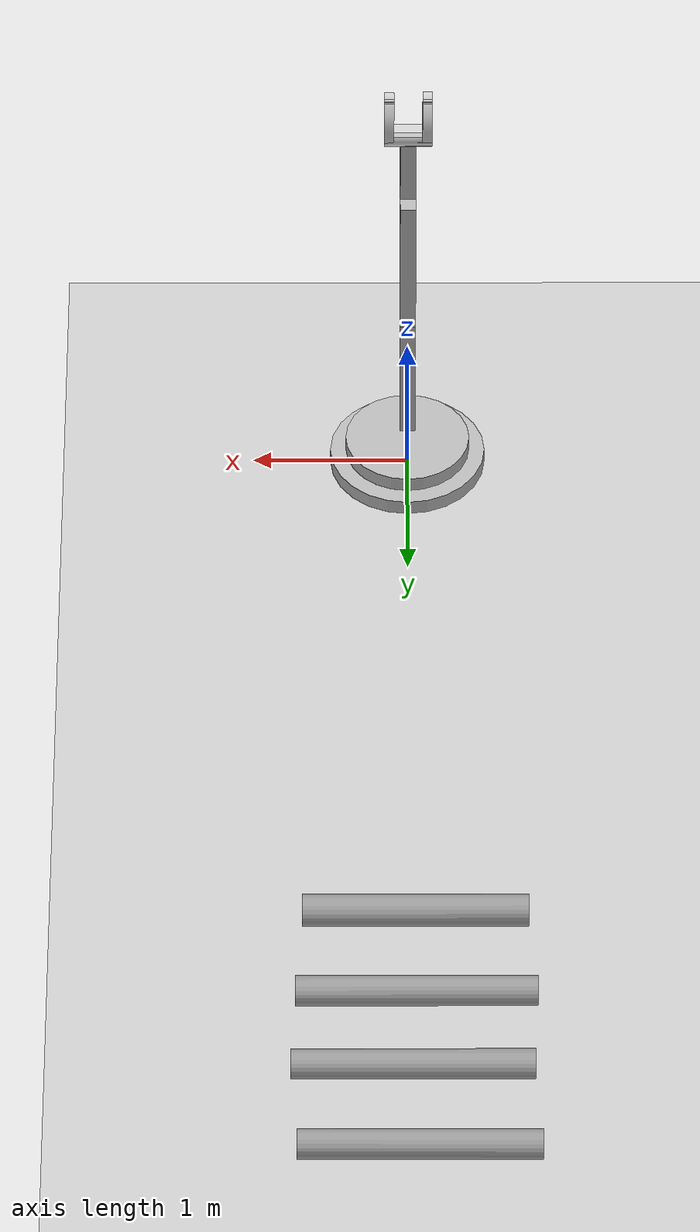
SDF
<sdf version="1.7">
 <world name="default">
  <light name="sun" type="directional">
   <pose>0 0 10 0 -0 0</pose>
   <diffuse>0.8 0.8 0.8 1</diffuse>
   <specular>0.2 0.2 0.2 1</specular>
   <attenuation>
    <range>1000</range>
    <constant>0.9</constant>
    <linear>0.01</linear>
    <quadratic>0.001</quadratic>
   </attenuation>
   <direction>-0.5 0.1 -0.9</direction>
   <spot><inner_angle>0</inner_angle><outer_angle>0</outer_angle><falloff>0</falloff></spot>
  </light>
  <model name="ground_plane">
   <static>1</static>
   <link name="link">
    <collision name="collision">
     <geometry><plane><normal>0 0 1</normal><size>100 100</size></plane></geometry>
     <surface><friction><ode><mu>100</mu><mu2>50</mu2></ode></friction></surface>
    </collision>
    <visual name="visual">
     <cast_shadows>0</cast_shadows>
     <geometry><plane><normal>0 0 1</normal><size>100 100</size></plane></geometry>
     <material>
      <script><uri>file://media/materials/scripts/gazebo.material</uri><name>Gazebo/Grey</name></script>
     </material>
    </visual>
   </link>
  </model>
  <gravity>0 0 -9.8</gravity>
  <magnetic_field>6e-06 2.3e-05 -4.2e-05</magnetic_field>
  <atmosphere type="adiabatic"/>
  <physics type="ode">
   <max_step_size>0.001</max_step_size>
   <real_time_factor>1</real_time_factor>
   <real_time_update_rate>1000</real_time_update_rate>
  </physics>
  <scene><ambient>0.4 0.4 0.4 1</ambient><background>0.7 0.7 0.7 1</background><shadows>1</shadows></scene>
  <spherical_coordinates>
   <surface_model>EARTH_WGS84</surface_model>
   <latitude_deg>0</latitude_deg>
   <longitude_deg>0</longitude_deg>
   <elevation>0</elevation>
   <heading_deg>0</heading_deg>
  </spherical_coordinates>
  <model name="unit_cylinder_mass_1">
   <pose>-0.03162 4.16223 0.100093 3.14159 1.57079 3.14159</pose>
   <link name="link">
    <inertial>
     <mass>1</mass>
     <inertia><ixx>0.145833</ixx><ixy>0</ixy><ixz>0</ixz><iyy>0.145833</iyy><iyz>0</iyz><izz>0.125</izz></inertia>
    </inertial>
    <collision name="collision">
     <geometry><cylinder><radius>0.100093</radius><length>1.3989</length></cylinder></geometry>
    </collision>
    <visual name="visual">
     <geometry><cylinder><radius>0.100093</radius><length>1.3989</length></cylinder></geometry>
     <material>
      <script><name>Gazebo/Grey</name><uri>file://media/materials/scripts/gazebo.material</uri></script>
     </material>
    </visual>
   </link>
  </model>
  <model name="unit_cylinder_mass_3">
   <pose>-0.036165 4.84107 0.092985 0 1.5705 0</pose>
   <link name="link">
    <inertial>
     <mass>3</mass>
     <inertia><ixx>0.145833</ixx><ixy>0</ixy><ixz>0</ixz><iyy>0.145833</iyy><iyz>0</iyz><izz>0.125</izz></inertia>
    </inertial>
    <collision name="collision">
     <geometry><cylinder><radius>0.093203</radius><length>1.48809</length></cylinder></geometry>
    </collision>
    <visual name="visual">
     <geometry><cylinder><radius>0.093203</radius><length>1.48809</length></cylinder></geometry>
     <material>
      <script><name>Gazebo/Grey</name><uri>file://media/materials/scripts/gazebo.material</uri></script>
     </material>
    </visual>
   </link>
  </model>
  <model name="unit_cylinder_mass_5">
   <pose>-0.012537 5.45343 0.092572 0 1.56995 0</pose>
   <link name="link">
    <inertial>
     <mass>5</mass>
     <inertia><ixx>0.145833</ixx><ixy>0</ixy><ixz>0</ixz><iyy>0.145833</iyy><iyz>0</iyz><izz>0.125</izz></inertia>
    </inertial>
    <collision name="collision">
     <geometry><cylinder><radius>0.093203</radius><length>1.48809</length></cylinder></geometry>
    </collision>
    <visual name="visual">
     <geometry><cylinder><radius>0.093203</radius><length>1.48809</length></cylinder></geometry>
     <material>
      <script><name>Gazebo/Grey</name><uri>file://media/materials/scripts/gazebo.material</uri></script>
     </material>
    </visual>
   </link>
  </model>
  <model name="unit_cylinder_mass_10">
   <pose>-0.04885 6.11003 0.090613 0 1.56731 0</pose>
   <link name="link">
    <inertial>
     <mass>10</mass>
     <inertia><ixx>0.145833</ixx><ixy>0</ixy><ixz>0</ixz><iyy>0.145833</iyy><iyz>0</iyz><izz>0.125</izz></inertia>
    </inertial>
    <collision name="collision">
     <geometry><cylinder><radius>0.093203</radius><length>1.48809</length></cylinder></geometry>
    </collision>
    <visual name="visual">
     <geometry><cylinder><radius>0.093203</radius><length>1.48809</length></cylinder></geometry>
     <material>
      <script><name>Gazebo/Grey</name><uri>file://media/materials/scripts/gazebo.material</uri></script>
     </material>
    </visual>
   </link>
  </model>
  <model name="robot">
   <joint name="fixed" type="fixed">
    <pose relative_to="__model__">0 0 0 0 -0 0</pose>
    <parent>world</parent>
    <child>stationary_base</child>
   </joint>
   <link name="stationary_base">
    <pose relative_to="fixed">0 0 0 0 -0 0</pose>
    <inertial>
     <mass>10</mass>
     <inertia><ixx>0.633333</ixx><ixy>0</ixy><ixz>0</ixz><iyy>0.633333</iyy><iyz>0</iyz><izz>1.25</izz></inertia>
    </inertial>
    <collision name="stationary_base_collision">
     <geometry><cylinder><length>0.1</length><radius>0.5</radius></cylinder></geometry>
    </collision>
    <visual name="stationary_base_visual">
     <geometry><cylinder><length>0.1</length><radius>0.5</radius></cylinder></geometry>
    </visual>
   </link>
   <joint name="stationary_base_spin_base_joint" type="revolute">
    <pose relative_to="stationary_base">0 0 0.06 0 -0 0</pose>
    <parent>stationary_base</parent>
    <child>spin_base</child>
    <axis>
     <xyz>0 0 1</xyz>
     <limit><lower>-3.14</lower><upper>3.14</upper><effort>100</effort><velocity>2</velocity></limit>
     <dynamics>
      <damping>10</damping>
      <friction>0.3</friction>
      <spring_reference>0</spring_reference>
      <spring_stiffness>0</spring_stiffness>
     </dynamics>
    </axis>
   </joint>
   <link name="spin_base">
    <pose relative_to="stationary_base_spin_base_joint">0 0 0 0 -0 0</pose>
    <inertial>
     <mass>2</mass>
     <inertia><ixx>0.0816667</ixx><ixy>0</ixy><ixz>0</ixz><iyy>0.0816667</iyy><iyz>0</iyz><izz>0.16</izz></inertia>
    </inertial>
    <collision name="spin_base_collision">
     <pose>0 0 0.05 0 -0 0</pose>
     <geometry><cylinder><length>0.1</length><radius>0.4</radius></cylinder></geometry>
    </collision>
    <visual name="spin_base_visual">
     <pose>0 0 0.05 0 -0 0</pose>
     <geometry><cylinder><length>0.1</length><radius>0.4</radius></cylinder></geometry>
    </visual>
   </link>
   <joint name="spin_base_arm1_joint" type="revolute">
    <pose relative_to="spin_base">0 0 0.2 0 -0 0</pose>
    <parent>spin_base</parent>
    <child>arm1</child>
    <axis>
     <xyz>0 1 0</xyz>
     <limit><lower>-1.57</lower><upper>1.57</upper><effort>100</effort><velocity>2</velocity></limit>
     <dynamics>
      <damping>10</damping>
      <friction>0.3</friction>
      <spring_reference>0</spring_reference>
      <spring_stiffness>0</spring_stiffness>
     </dynamics>
    </axis>
   </joint>
   <link name="arm1">
    <pose relative_to="spin_base_arm1_joint">0 0 0 0 -0 0</pose>
    <inertial>
     <mass>0.5</mass>
     <inertia>
      <ixx>0.000833333</ixx>
      <ixy>0</ixy>
      <ixz>0</ixz>
      <iyy>0.0420833</iyy>
      <iyz>0</iyz>
      <izz>0.0420833</izz>
     </inertia>
    </inertial>
    <collision name="arm1_collision">
     <pose>0 0 0.5 3.14159 1.57079 3.14159</pose>
     <geometry><box><size>1 0.1 0.1</size></box></geometry>
    </collision>
    <visual name="arm1_visual">
     <pose>0 0 0.5 3.14159 1.57079 3.14159</pose>
     <geometry><box><size>1 0.1 0.1</size></box></geometry>
    </visual>
   </link>
   <joint name="arm1_arm2_joint" type="revolute">
    <pose relative_to="arm1">0 0.05 1 0 -0 0</pose>
    <parent>arm1</parent>
    <child>arm2</child>
    <axis>
     <xyz>0 1 0</xyz>
     <limit><lower>-3.14</lower><upper>3.14</upper><effort>100</effort><velocity>2</velocity></limit>
     <dynamics>
      <damping>10</damping>
      <friction>0.3</friction>
      <spring_reference>0</spring_reference>
      <spring_stiffness>0</spring_stiffness>
     </dynamics>
    </axis>
   </joint>
   <link name="arm2">
    <pose relative_to="arm1_arm2_joint">0 0 0 0 -0 0</pose>
    <inertial>
     <mass>0.5</mass>
     <inertia>
      <ixx>0.000833333</ixx>
      <ixy>0</ixy>
      <ixz>0</ixz>
      <iyy>0.0420833</iyy>
      <iyz>0</iyz>
      <izz>0.0420833</izz>
     </inertia>
    </inertial>
    <collision name="arm2_collision">
     <pose>0 0.05 0.5 3.14159 1.57079 3.14159</pose>
     <geometry><box><size>1 0.1 0.1</size></box></geometry>
    </collision>
    <visual name="arm2_visual">
     <pose>0 0.05 0.5 3.14159 1.57079 3.14159</pose>
     <geometry><box><size>1 0.1 0.1</size></box></geometry>
    </visual>
   </link>
   <joint name="arm2_arm3_joint" type="revolute">
    <pose relative_to="arm2">0 0 1 0 -0 0</pose>
    <parent>arm2</parent>
    <child>arm3</child>
    <axis>
     <xyz>0 1 0</xyz>
     <limit><lower>-3.14</lower><upper>3.14</upper><effort>100</effort><velocity>2</velocity></limit>
     <dynamics>
      <damping>10</damping>
      <friction>0.3</friction>
      <spring_reference>0</spring_reference>
      <spring_stiffness>0</spring_stiffness>
     </dynamics>
    </axis>
   </joint>
   <link name="arm3">
    <pose relative_to="arm2_arm3_joint">0 0 0 0 -0 0</pose>
    <inertial>
     <mass>0.5</mass>
     <inertia>
      <ixx>0.000833333</ixx>
      <ixy>0</ixy>
      <ixz>0</ixz>
      <iyy>0.0108333</iyy>
      <iyz>0</iyz>
      <izz>0.0108333</izz>
     </inertia>
    </inertial>
    <collision name="arm3_collision">
     <pose>0 -0.05 0.25 3.14159 1.57079 3.14159</pose>
     <geometry><box><size>0.5 0.1 0.1</size></box></geometry>
    </collision>
    <visual name="arm3_visual">
     <pose>0 -0.05 0.25 3.14159 1.57079 3.14159</pose>
     <geometry><box><size>0.5 0.1 0.1</size></box></geometry>
    </visual>
   </link>
   <joint name="arm3_gripper1_joint" type="revolute">
    <pose relative_to="arm3">0 -0.05 0.5 0 -0 0</pose>
    <parent>arm3</parent>
    <child>gripper1</child>
    <axis>
     <xyz>-1 0 0</xyz>
     <limit><lower>-3.14</lower><upper>0</upper><effort>100</effort><velocity>2</velocity></limit>
     <dynamics>
      <damping>10</damping>
      <friction>0.3</friction>
      <spring_reference>0</spring_reference>
      <spring_stiffness>0</spring_stiffness>
     </dynamics>
    </axis>
   </joint>
   <link name="gripper1">
    <pose relative_to="arm3_gripper1_joint">0 0 0 0 -0 0</pose>
    <inertial>
     <mass>0.1</mass>
     <inertia><ixx>0.01</ixx><ixy>0</ixy><ixz>0</ixz><iyy>0.01</iyy><iyz>0</iyz><izz>0.01</izz></inertia>
    </inertial>
    <collision name="gripper1_collision">
     <pose>-0.15 0 0 1.57 -0 1.57</pose>
     <geometry>
      <mesh><scale>3 3 3</scale><uri>/home/huynhmink/catkin_ws/src/hdm_robotarm01/mesh/gripper1.dae</uri></mesh>
     </geometry>
    </collision>
    <visual name="gripper1_visual">
     <pose>-0.15 0 0 1.57 -0 1.57</pose>
     <geometry>
      <mesh><scale>3 3 3</scale><uri>/home/huynhmink/catkin_ws/src/hdm_robotarm01/mesh/gripper1.dae</uri></mesh>
     </geometry>
    </visual>
   </link>
   <joint name="arm3_gripper2_joint" type="revolute">
    <pose relative_to="arm3">0 -0.05 0.5 0 -0 0</pose>
    <parent>arm3</parent>
    <child>gripper2</child>
    <axis>
     <xyz>1 0 0</xyz>
     <limit><lower>-3.14</lower><upper>0</upper><effort>100</effort><velocity>2</velocity></limit>
     <dynamics>
      <damping>10</damping>
      <friction>0.3</friction>
      <spring_reference>0</spring_reference>
      <spring_stiffness>0</spring_stiffness>
     </dynamics>
    </axis>
   </joint>
   <link name="gripper2">
    <pose relative_to="arm3_gripper2_joint">0 0 0 0 -0 0</pose>
    <inertial>
     <mass>0.1</mass>
     <inertia><ixx>0.01</ixx><ixy>0</ixy><ixz>0</ixz><iyy>0.01</iyy><iyz>0</iyz><izz>0.01</izz></inertia>
    </inertial>
    <collision name="gripper2_collision">
     <pose>-0.15 0 0 1.57 -0 1.57</pose>
     <geometry>
      <mesh><scale>3 3 3</scale><uri>/home/huynhmink/catkin_ws/src/hdm_robotarm01/mesh/gripper2.dae</uri></mesh>
     </geometry>
    </collision>
    <visual name="gripper2_visual">
     <pose>-0.15 0 0 1.57 -0 1.57</pose>
     <geometry>
      <mesh><scale>3 3 3</scale><uri>/home/huynhmink/catkin_ws/src/hdm_robotarm01/mesh/gripper2.dae</uri></mesh>
     </geometry>
    </visual>
   </link>
   <static>0</static>
   <plugin name="gazebo_ros_control" filename="libgazebo_ros_control.so">
    <robotNamespace>/</robotNamespace>
   </plugin>
   <pose>0 0 0.05 0 -0 0</pose>
  </model>
 </world>
</sdf>
